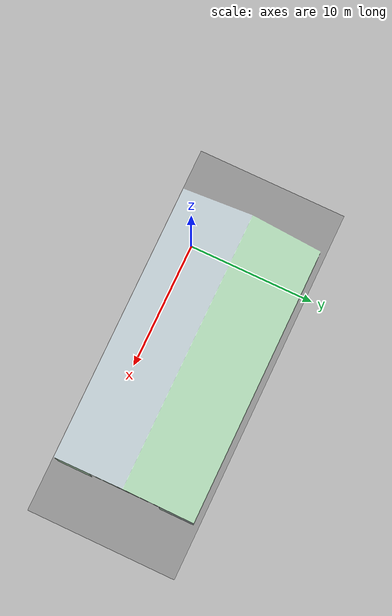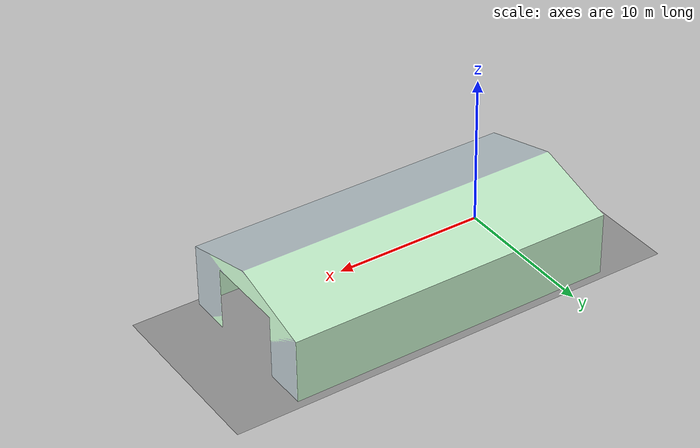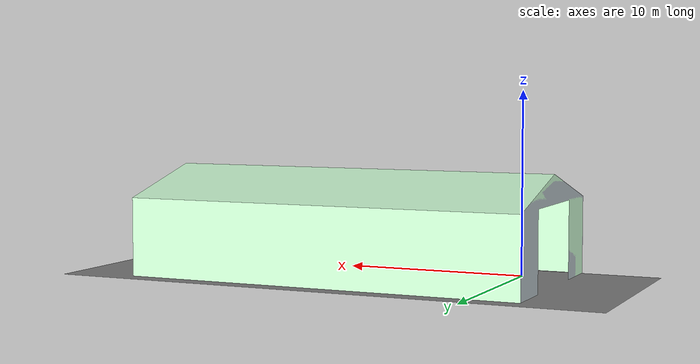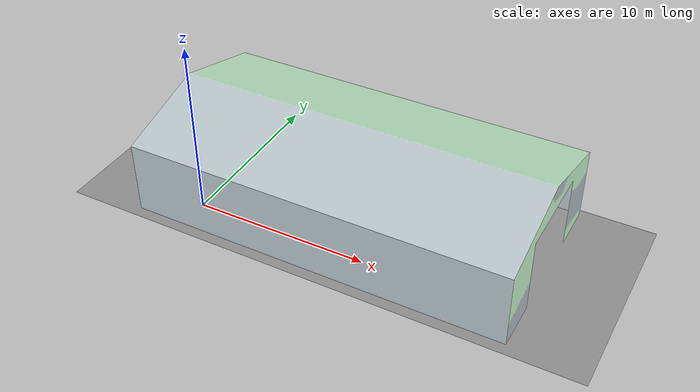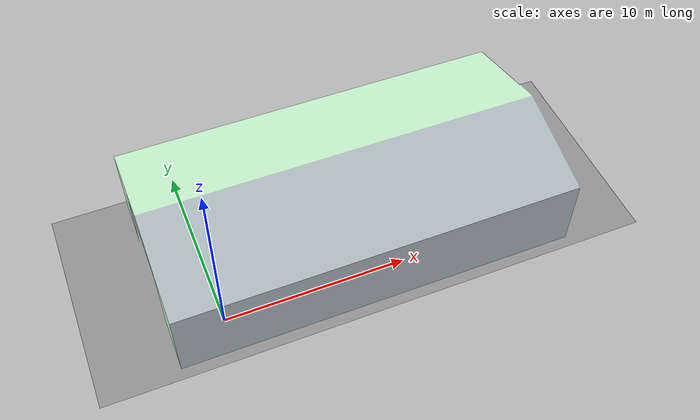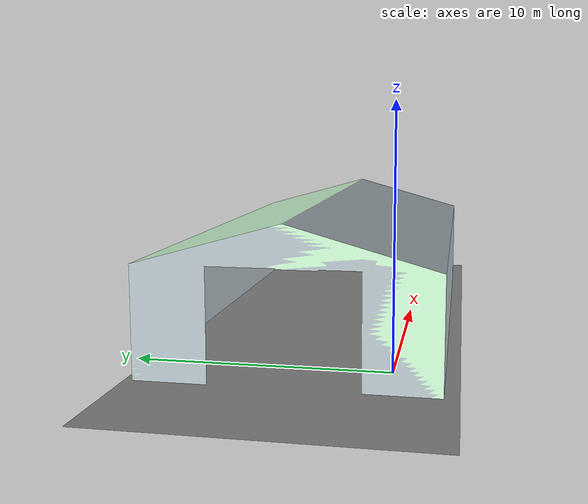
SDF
<?xml version="1.0" ?>
<sdf version="1.6">
  <model name="structure_0">
    <static>true</static>
    <link name="link">
      <collision name="collision">
        <geometry>
          <mesh>
            <scale>1 1 1</scale>
            <uri>model://structure_0/meshes/Structure.stl</uri>
          </mesh>
        </geometry>
      </collision>
      <visual name="visual">
        <geometry>
          <mesh>
            <scale>1 1 1</scale>
            <uri>model://structure_0/meshes/Structure.stl</uri>
          </mesh>
        </geometry>
      </visual>
    </link>
  </model>
</sdf>
